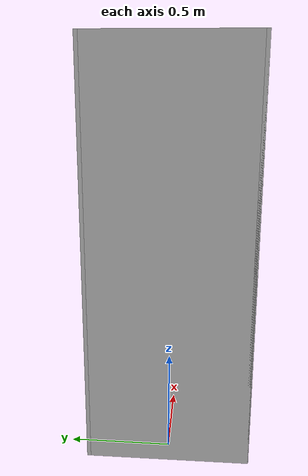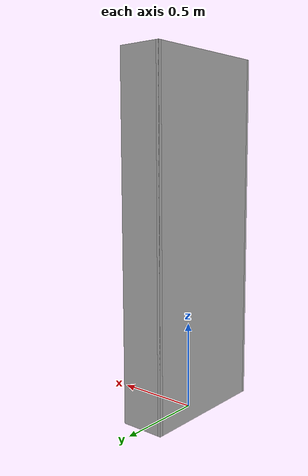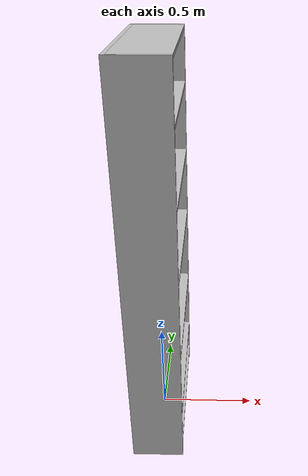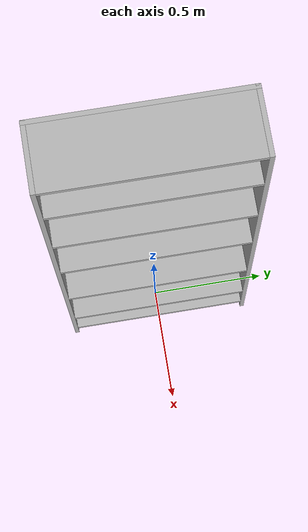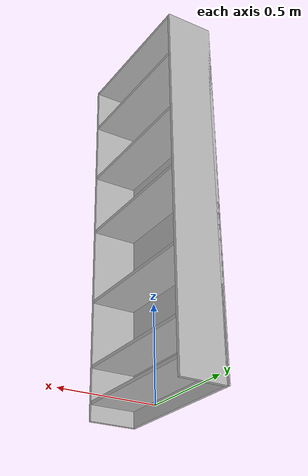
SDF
<?xml version="1.0"?>
<sdf version="1.6">
  <model name="rwc2018/cupboard">
    <link name="1_link">
      <collision name="1_col">
        <geometry>
          <box>
            <size>0.26 0.018 2.02</size>
          </box>
        </geometry>
      </collision>
      <visual name="1_vis">
        <geometry>
          <box>
            <size>0.26 0.018 2.02</size>
          </box>
        </geometry>
      </visual>
      <pose>0 -0.391 1.01 0 0 0</pose>
    </link>
    <link name="2_link">
      <collision name="2_col">
        <geometry>
          <box>
            <size>0.26 0.018 2.02</size>
          </box>
        </geometry>
      </collision>
      <visual name="2_vis">
        <geometry>
          <box>
            <size>0.26 0.018 2.02</size>
          </box>
        </geometry>
      </visual>
      <pose>0 0.391 1.01 0 0 0</pose>
    </link>
    <link name="3_link">
      <collision name="3_col">
        <geometry>
          <box>
            <size>0.018 0.8 2.02</size>
          </box>
        </geometry>
      </collision>
      <visual name="3_vis">
        <geometry>
          <box>
            <size>0.018 0.8 2.02</size>
          </box>
        </geometry>
      </visual>
      <pose>-0.121 0 1.01 0 0 0</pose>
    </link>
    <link name="4_link">
      <collision name="4_col">
        <geometry>
          <box>
            <size>0.242 0.764 0.018</size>
          </box>
        </geometry>
      </collision>
      <visual name="4_vis">
        <geometry>
          <box>
            <size>0.242 0.764 0.018</size>
          </box>
        </geometry>
      </visual>
      <pose>0.009 0 2.011 0 0 0</pose>
    </link>
    <link name="5_link">
      <collision name="5_col">
        <geometry>
          <box>
            <size>0.242 0.764 0.018</size>
          </box>
        </geometry>
      </collision>
      <visual name="5_vis">
        <geometry>
          <box>
            <size>0.242 0.764 0.018</size>
          </box>
        </geometry>
      </visual>
      <pose>0.009 0 0.091 0 0 0</pose>
    </link>
    <link name="6_link">
      <collision name="6_col">
        <geometry>
          <box>
            <size>0.242 0.764 0.018</size>
          </box>
        </geometry>
      </collision>
      <visual name="6_vis">
        <geometry>
          <box>
            <size>0.242 0.764 0.018</size>
          </box>
        </geometry>
      </visual>
      <pose>0.009 0 0.276 0 0 0</pose>
    </link>
    <link name="7_link">
      <collision name="7_col">
        <geometry>
          <box>
            <size>0.242 0.764 0.018</size>
          </box>
        </geometry>
      </collision>
      <visual name="7_vis">
        <geometry>
          <box>
            <size>0.242 0.764 0.018</size>
          </box>
        </geometry>
      </visual>
      <pose>0.009 0 0.631 0 0 0</pose>
    </link>
    <link name="8_link">
      <collision name="8_col">
        <geometry>
          <box>
            <size>0.242 0.764 0.018</size>
          </box>
        </geometry>
      </collision>
      <visual name="8_vis">
        <geometry>
          <box>
            <size>0.242 0.764 0.018</size>
          </box>
        </geometry>
      </visual>
      <pose>0.009 0 1.051 0 0 0</pose>
    </link>
    <link name="9_link">
      <collision name="9_col">
        <geometry>
          <box>
            <size>0.242 0.764 0.018</size>
          </box>
        </geometry>
      </collision>
      <visual name="9_vis">
        <geometry>
          <box>
            <size>0.242 0.764 0.018</size>
          </box>
        </geometry>
      </visual>
      <pose>0.009 0 1.401 0 0 0</pose>
    </link>
    <link name="10_link">
      <collision name="10_col">
        <geometry>
          <box>
            <size>0.242 0.764 0.018</size>
          </box>
        </geometry>
      </collision>
      <visual name="10_vis">
        <geometry>
          <box>
            <size>0.242 0.764 0.018</size>
          </box>
        </geometry>
      </visual>
      <pose>0.009 0 1.751 0 0 0</pose>
    </link>
    <link name="in_front_of">
      <virtual_volume name="in_front_of_vv">
        <geometry>
          <box>
            <size>0.2 0.54 0.01</size>
          </box>
        </geometry>
        <pose>0.63 0.0 0.005 0 0 0</pose>
      </virtual_volume>
    </link>
    <link name="shelf1">
      <virtual_volume name="shelf1_vv">
        <geometry>
          <box>
            <size>0.21 0.704 0.16</size>
          </box>
        </geometry>
        <pose>0.015 0.0 0.2 0 0 0</pose>
      </virtual_volume>
    </link>
    <link name="shelf2">
      <virtual_volume name="shelf2_vv">
        <geometry>
          <box>
            <size>0.21 0.704 0.25</size>
          </box>
        </geometry>
        <pose>0.015 0.0 0.43 0 0 0</pose>
      </virtual_volume>
    </link>
    <link name="shelf3">
      <virtual_volume name="shelf3_vv">
        <geometry>
          <box>
            <size>0.21 0.704 0.25</size>
          </box>
        </geometry>
        <pose>0.015 0.0 0.785 0 0 0</pose>
      </virtual_volume>
    </link>
    <link name="shelf4">
      <virtual_volume name="shelf4_vv">
        <geometry>
          <box>
            <size>0.21 0.704 0.25</size>
          </box>
        </geometry>
        <pose>0.015 0.0 1.205 0 0 0</pose>
      </virtual_volume>
    </link>
    <link name="shelf5">
      <virtual_volume name="shelf5_vv">
        <geometry>
          <box>
            <size>0.21 0.704 0.25</size>
          </box>
        </geometry>
        <pose>0.015 0.0 1.555 0 0 0</pose>
      </virtual_volume>
    </link>
    <link name="shelf6">
      <virtual_volume name="shelf6_vv">
        <geometry>
          <box>
            <size>0.21 0.704 0.22</size>
          </box>
        </geometry>
        <pose>0.015 0.0 1.86 0 0 0</pose>
      </virtual_volume>
    </link>
    <link name="on_top_of">
      <virtual_volume name="on_top_of_vv">
        <geometry>
          <box>
            <size>0.21 0.704 0.25</size>
          </box>
        </geometry>
        <pose>0.015 0.0 1.205 0 0 0</pose>
      </virtual_volume>
    </link>
    <static>true</static>
  </model>
</sdf>
